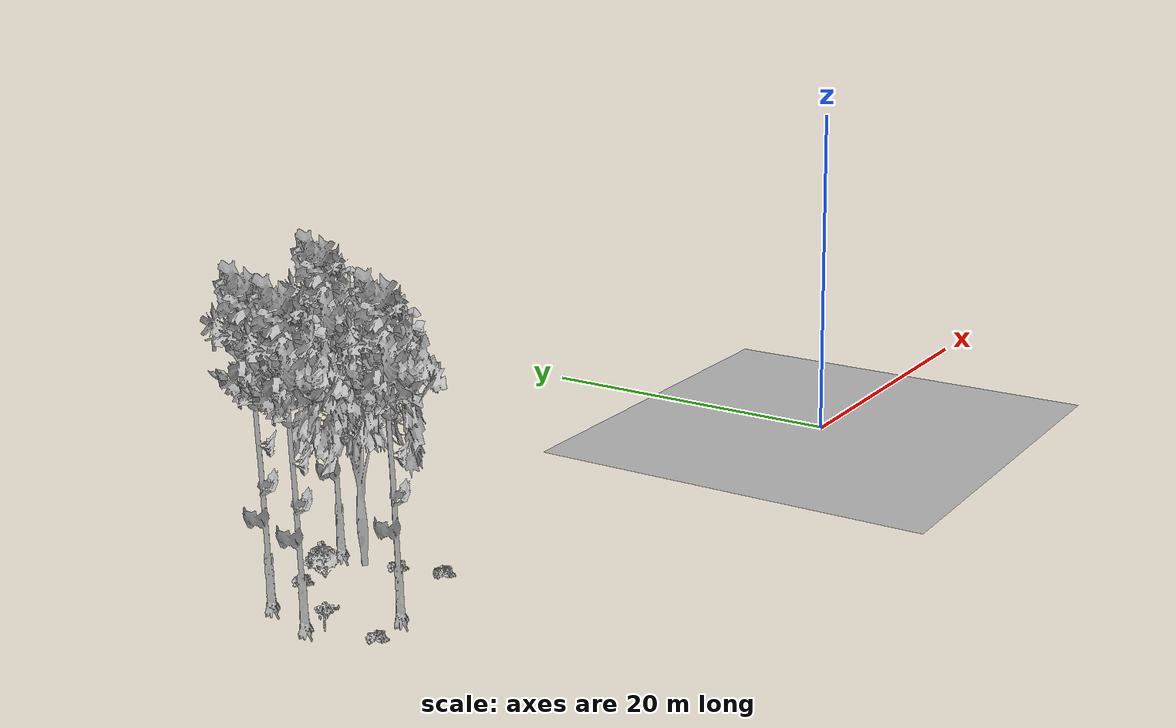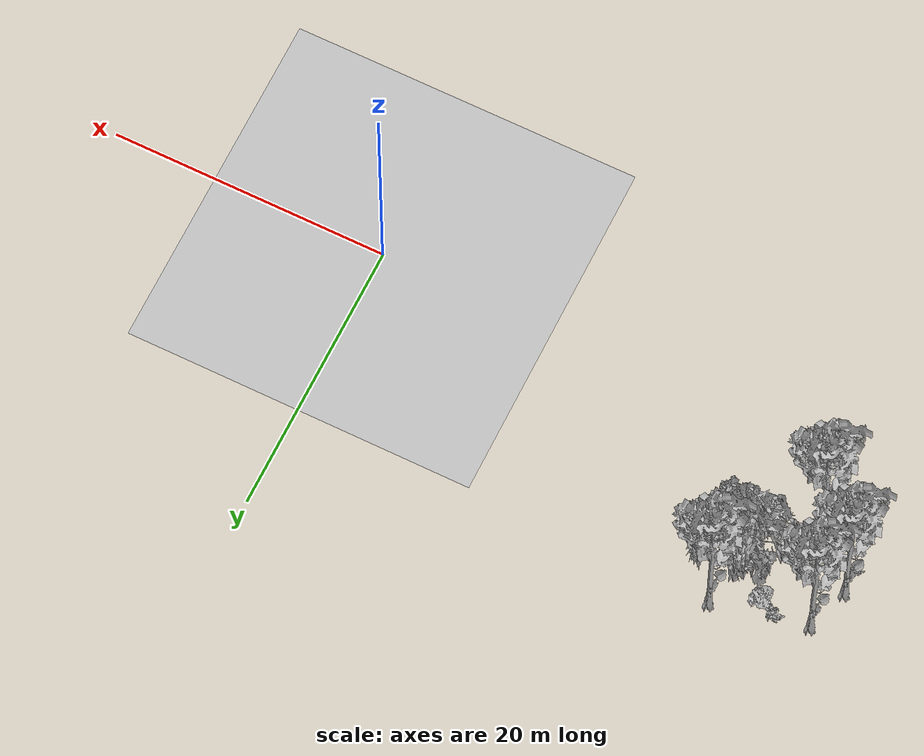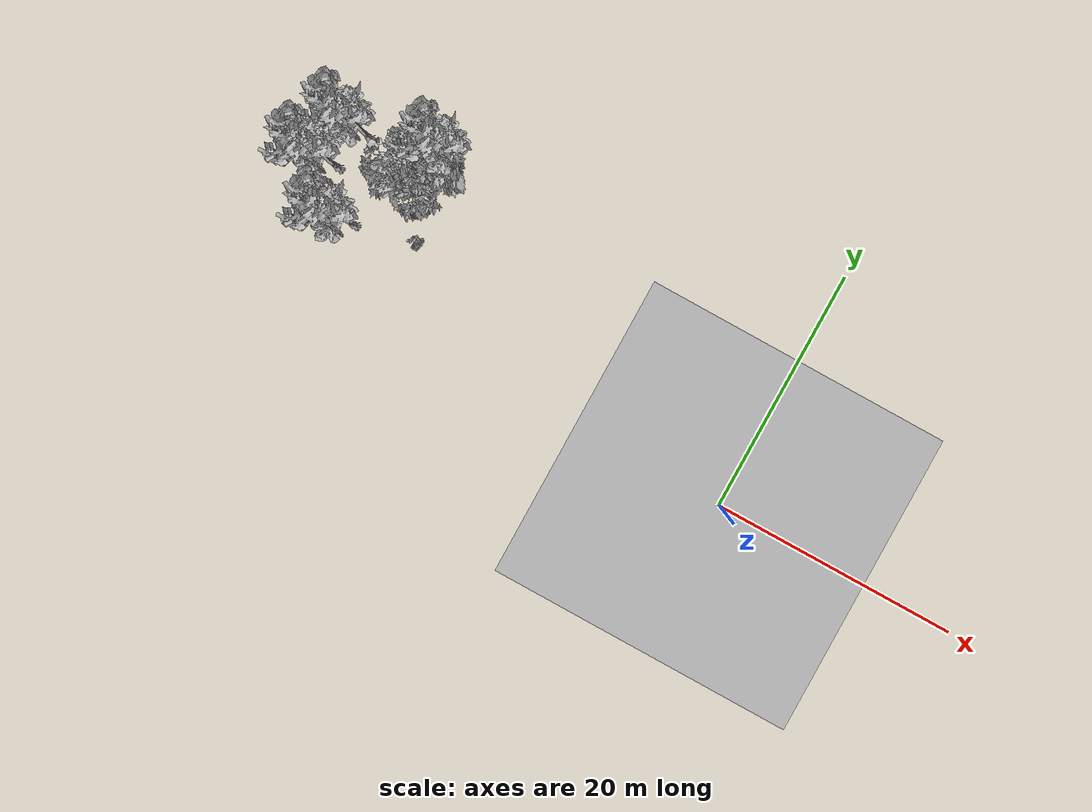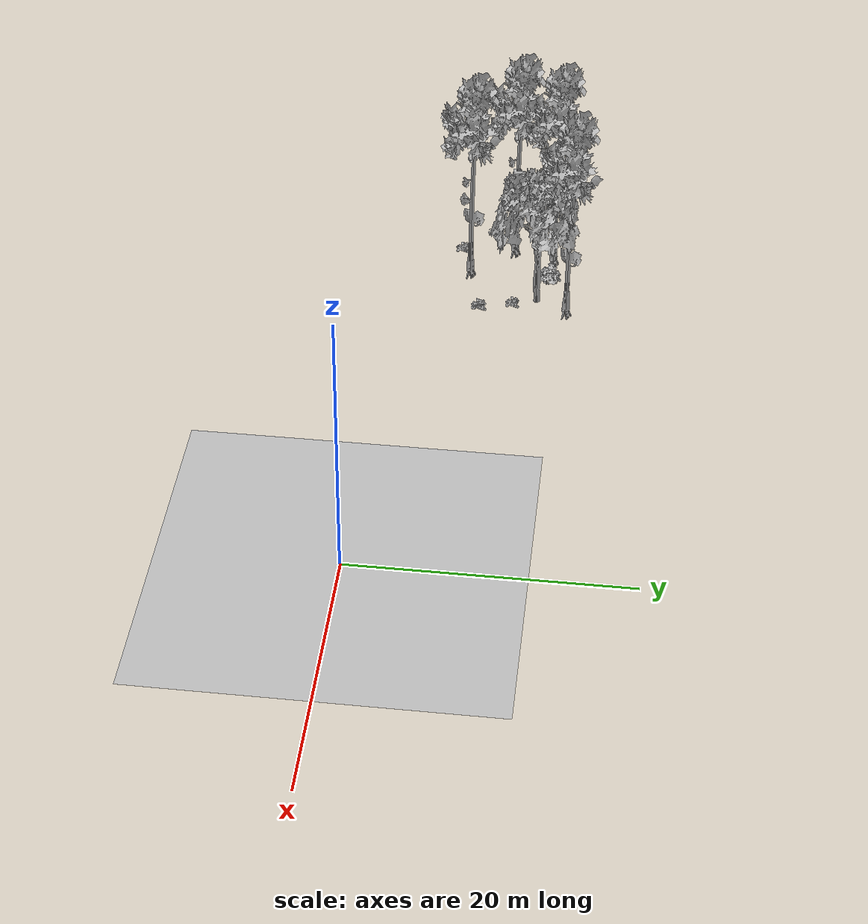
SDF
<sdf version="1.7">
 <world name="default">
  <model name="ground_plane">
   <static>1</static>
   <link name="link">
    <collision name="collision">
     <pose>-50 0 0 0 -0 0</pose>
     <geometry><plane><normal>0 0 1</normal><size>80 80</size></plane></geometry>
     <surface><contact><ode><min_depth>0.01</min_depth><max_vel>0</max_vel></ode></contact></surface>
    </collision>
    <visual name="grass">
     <cast_shadows>0</cast_shadows>
     <geometry>
      <mesh>
       <scale>0.46714285714285714 0.46714285714285714 0.1</scale>
       <uri>file://grass_plane/meshes/grass_plane.dae</uri>
      </mesh>
     </geometry>
    </visual>
   </link>
  </model>
  <model name="Tree 126">
   <static>1</static>
   <pose>-31.166477173082974 10.722572760002834 0 1.57079 -0 0</pose>
   <link name="link">
    <collision name="collision">
     <geometry><mesh><scale>3.5 5 3.5</scale><uri>model://tree_2/meshes/tree_2.obj</uri></mesh></geometry>
    </collision>
    <visual name="visual">
     <geometry><mesh><scale>3.5 5 3.5</scale><uri>model://tree_2/meshes/tree_2.obj</uri></mesh></geometry>
    </visual>
   </link>
  </model>
  <model name="Tree 143">
   <static>1</static>
   <pose>-34.73798354818171 5.262525245099432 0 1.57079 -0 0</pose>
   <link name="link">
    <collision name="collision">
     <geometry><mesh><scale>3.5 5 3.5</scale><uri>model://tree_9/meshes/tree_9.obj</uri></mesh></geometry>
    </collision>
    <visual name="visual">
     <geometry><mesh><scale>3.5 5 3.5</scale><uri>model://tree_9/meshes/tree_9.obj</uri></mesh></geometry>
    </visual>
   </link>
  </model>
  <model name="Tree 179">
   <static>1</static>
   <pose>-37.937603084903934 8.515034220186507 0 1.57079 -0 0</pose>
   <link name="link">
    <collision name="collision">
     <geometry><mesh><scale>3.5 5 3.5</scale><uri>model://tree_9/meshes/tree_9.obj</uri></mesh></geometry>
    </collision>
    <visual name="visual">
     <geometry><mesh><scale>3.5 5 3.5</scale><uri>model://tree_9/meshes/tree_9.obj</uri></mesh></geometry>
    </visual>
   </link>
  </model>
  <model name="Tree 341">
   <static>1</static>
   <pose>-36.93623335770422 11.641073833914788 0 1.57079 -0 0</pose>
   <link name="link">
    <collision name="collision">
     <geometry><mesh><scale>3.5 5 3.5</scale><uri>model://tree_9/meshes/tree_9.obj</uri></mesh></geometry>
    </collision>
    <visual name="visual">
     <geometry><mesh><scale>3.5 5 3.5</scale><uri>model://tree_9/meshes/tree_9.obj</uri></mesh></geometry>
    </visual>
   </link>
  </model>
  <model name="Tree 587">
   <static>1</static>
   <pose>-30.263317770100493 13.063303468216894 0 1.57079 -0 0</pose>
   <link name="link">
    <collision name="collision">
     <geometry><mesh><scale>3.5 5 3.5</scale><uri>model://tree_9/meshes/tree_9.obj</uri></mesh></geometry>
    </collision>
    <visual name="visual">
     <geometry><mesh><scale>3.5 5 3.5</scale><uri>model://tree_9/meshes/tree_9.obj</uri></mesh></geometry>
    </visual>
   </link>
  </model>
  <model name="Bush 140">
   <static>1</static>
   <pose>-30.00409743393248 6.445062098657679 0 1.57079 -0 0</pose>
   <link name="link">
    <collision name="collision">
     <geometry><mesh><scale>2 2 2</scale><uri>model://bush_2/meshes/bush_2.obj</uri></mesh></geometry>
     <surface><contact><collide_without_contact>false</collide_without_contact></contact></surface>
    </collision>
    <visual name="visual">
     <geometry><mesh><scale>2 2 2</scale><uri>model://bush_2/meshes/bush_2.obj</uri></mesh></geometry>
    </visual>
   </link>
  </model>
  <model name="Bush 251">
   <static>1</static>
   <pose>-34.4831982016431 11.878969602944693 0 1.57079 -0 0</pose>
   <link name="link">
    <collision name="collision">
     <geometry><mesh><scale>2 2 2</scale><uri>model://bush_2/meshes/bush_2.obj</uri></mesh></geometry>
     <surface><contact><collide_without_contact>false</collide_without_contact></contact></surface>
    </collision>
    <visual name="visual">
     <geometry><mesh><scale>2 2 2</scale><uri>model://bush_2/meshes/bush_2.obj</uri></mesh></geometry>
    </visual>
   </link>
  </model>
  <model name="Bush 286">
   <static>1</static>
   <pose>-30.048965811775076 6.3029303106159915 0 1.57079 -0 0</pose>
   <link name="link">
    <collision name="collision">
     <geometry><mesh><scale>2 2 2</scale><uri>model://bush_2/meshes/bush_2.obj</uri></mesh></geometry>
     <surface><contact><collide_without_contact>false</collide_without_contact></contact></surface>
    </collision>
    <visual name="visual">
     <geometry><mesh><scale>2 2 2</scale><uri>model://bush_2/meshes/bush_2.obj</uri></mesh></geometry>
    </visual>
   </link>
  </model>
  <model name="Bush 472">
   <static>1</static>
   <pose>-30.639966322856857 8.904144482126298 0 1.57079 -0 0</pose>
   <link name="link">
    <collision name="collision">
     <geometry><mesh><scale>2 2 2</scale><uri>model://bush_2/meshes/bush_2.obj</uri></mesh></geometry>
     <surface><contact><collide_without_contact>false</collide_without_contact></contact></surface>
    </collision>
    <visual name="visual">
     <geometry><mesh><scale>2 2 2</scale><uri>model://bush_2/meshes/bush_2.obj</uri></mesh></geometry>
    </visual>
   </link>
  </model>
  <model name="Bush 498">
   <static>1</static>
   <pose>-33.344077668979224 11.378105880569095 0 1.57079 -0 0</pose>
   <link name="link">
    <collision name="collision">
     <geometry><mesh><scale>2 2 2</scale><uri>model://bush_1/meshes/bush_1.obj</uri></mesh></geometry>
     <surface><contact><collide_without_contact>false</collide_without_contact></contact></surface>
    </collision>
    <visual name="visual">
     <geometry><mesh><scale>2 2 2</scale><uri>model://bush_1/meshes/bush_1.obj</uri></mesh></geometry>
    </visual>
   </link>
  </model>
  <model name="Bush 542">
   <static>1</static>
   <pose>-37.49503551290132 4.388237889418093 0 1.57079 -0 0</pose>
   <link name="link">
    <collision name="collision">
     <geometry><mesh><scale>2 2 2</scale><uri>model://bush_2/meshes/bush_2.obj</uri></mesh></geometry>
     <surface><contact><collide_without_contact>false</collide_without_contact></contact></surface>
    </collision>
    <visual name="visual">
     <geometry><mesh><scale>2 2 2</scale><uri>model://bush_2/meshes/bush_2.obj</uri></mesh></geometry>
    </visual>
   </link>
  </model>
  <model name="Bush 636">
   <static>1</static>
   <pose>-38.01914829756619 7.1367812086676 0 1.57079 -0 0</pose>
   <link name="link">
    <collision name="collision">
     <geometry><mesh><scale>2 2 2</scale><uri>model://bush_5/meshes/bush_5.obj</uri></mesh></geometry>
     <surface><contact><collide_without_contact>false</collide_without_contact></contact></surface>
    </collision>
    <visual name="visual">
     <geometry><mesh><scale>2 2 2</scale><uri>model://bush_5/meshes/bush_5.obj</uri></mesh></geometry>
    </visual>
   </link>
  </model>
 </world>
</sdf>
